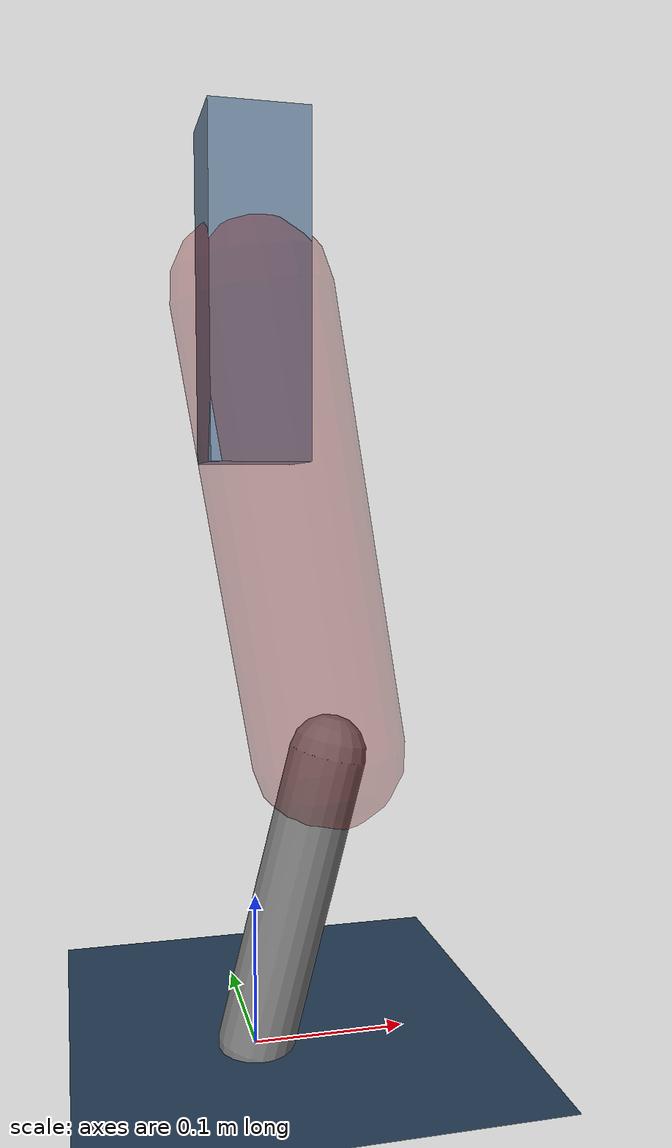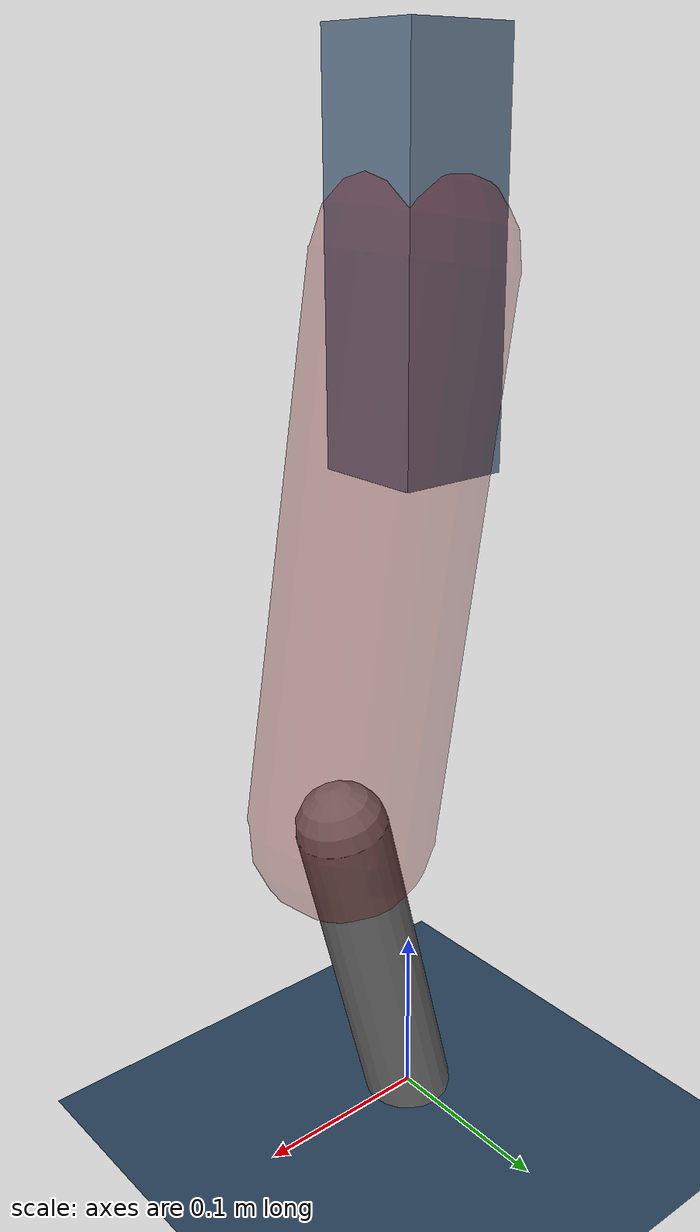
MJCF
<mujoco model="Hopper2D">
	<compiler inertiafromgeom="true" angle="radian" />
	<option timestep="0.001" integrator="implicit" cone="elliptic" solver="Newton" tolerance="1e-10" />

	<default>
		<geom contype="1" conaffinity="1" condim="3" friction="2 0.005 0.0001" solref="0.005 1" />
		<joint limited="true" damping="0.1" />
	</default>

	<asset>
		<texture name="skybox" type="skybox" builtin="gradient" rgb1=".4 .6 .8" rgb2="0 0 0" width="800" height="800" />
		<texture name="grid" type="2d" builtin="checker" rgb1=".1 .2 .3" rgb2=".2 .3 .4" width="300" height="300" mark="edge" markrgb=".2 .3 .4" />
		<material name="ground" texture="grid" texrepeat="1 1" texuniform="true" reflectance="0.1" />
		<material name="leg" rgba="0.5 0.6 0.7 1" />
	</asset>

	<worldbody>

		<geom name="floor" type="plane" size="5 5 0.25" material="ground" />

		<light directional="false" diffuse="0.8 0.8 0.8" specular="0.3 0.3 0.3" pos="0 0 2" dir="0 0 -1" />
		<light mode="targetbodycom" target="base" directional="false" diffuse="0.8 0.8 0.8" specular="0.3 0.3 0.3" pos="0 0 2" dir="0 0 -1" />

		<camera name="fixed" pos="0 -2 1" xyaxes="1 0 0 0 0 1" />
		<camera name="tracking" mode="trackcom" pos="0 -3 1" />

		<body name="root" pos="0 0 0.47632136937247066">
			<joint name="slide_x" type="slide" axis="1 0 0" range="-100 100" />
			<joint name="slide_z" type="slide" axis="0 0 1" range="0 10" />

			<body name="base" pos="0 0 0">
				<geom name="torso" type="box" size="0.03 0.03 0.1" mass="3.47" material="leg" />

				<body name="link1" pos="0 0 0" euler="0 1.4029380832816254 0">
					<joint type="hinge" axis="0 -1 0" pos="0 0 0" name="hinge1" limited="true" range="-3.14 3.14" stiffness="0" damping="0.1" />
					<geom name="thigh" type="capsule" fromto="0 0 0 0.2883067373766871 0 0" size="0.05" rgba="0.5 0 0 0.3" mass="0.9572975171793865" />

					<body name="link2" pos="0.2883067373766871 0 0" euler="0 0.41357676528433934 0">
						<joint type="hinge" axis="0 -1 0" pos="0 0 0" name="hinge2" limited="true" range="-3.14 3.14" stiffness="0" damping="0.1" />
						<geom name="shank" type="capsule" fromto="0 0 0 0.19801463199578356 0 0" size="0.025" mass="0.3992131687962052" />

					</body>
				</body>
			</body>
		</body>
	</worldbody>

	<actuator>
		<motor name="torque1" joint="hinge1" ctrlrange="-99.75368827497758 99.75368827497758" ctrllimited="true" gear="1" />
		<motor name="torque2" joint="hinge2" ctrlrange="-183.95979890893915 183.95979890893915" ctrllimited="true" gear="1" />
	</actuator>
</mujoco>
